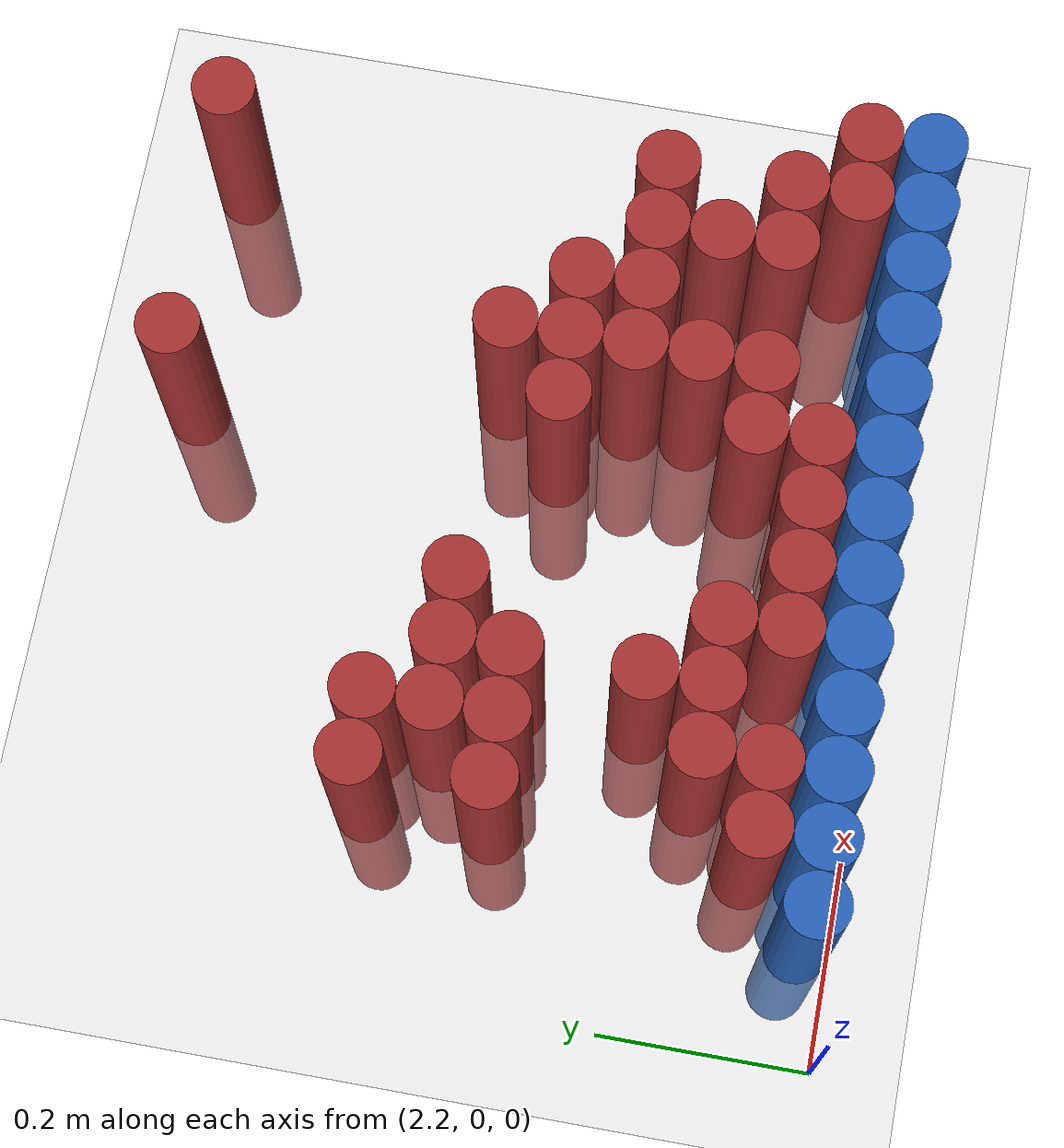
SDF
<sdf version="1.6">
 <world name="default">
  <model name="ground_plane">
   <static>1</static>
   <link name="link">
    <collision name="collision">
     <geometry><plane><normal>0 0 1</normal><size>100 100</size></plane></geometry>
     <surface><friction><ode><mu>100</mu><mu2>50</mu2></ode></friction></surface>
    </collision>
    <visual name="visual">
     <cast_shadows>0</cast_shadows>
     <geometry><plane><normal>0 0 1</normal><size>100 100</size></plane></geometry>
     <material>
      <script><uri>file://media/materials/scripts/gazebo.material</uri><name>Gazebo/Grey</name></script>
     </material>
    </visual>
   </link>
  </model>
  <model name="unit_cylinder_228">
   <static>1</static>
   <pose>2.730000 0.690000 0.000000 0.000000 0.000000 0.000000</pose>
   <link name="link">
    <inertial>
     <mass>1</mass>
     <inertia><ixx>0.145833</ixx><ixy>0</ixy><ixz>0</ixz><iyy>0.145833</iyy><iyz>0</iyz><izz>0.125</izz></inertia>
    </inertial>
    <collision name="collision">
     <geometry><cylinder><radius>0.030000</radius><length>0.5</length></cylinder></geometry>
    </collision>
    <visual name="visual">
     <geometry><cylinder><radius>0.030000</radius><length>0.5</length></cylinder></geometry>
     <material>
      <ambient>0.648000 0.192000 0.192000 1</ambient>
      <diffuse>0.648000 0.192000 0.192000 1</diffuse>
     </material>
     <material>
      <script><name>Gazebo/Grey</name><uri>file://media/materials/scripts/gazebo.material</uri></script>
     </material>
    </visual>
   </link>
  </model>
  <model name="unit_cylinder_229">
   <static>1</static>
   <pose>2.970000 0.690000 0.000000 0.000000 0.000000 0.000000</pose>
   <link name="link">
    <inertial>
     <mass>1</mass>
     <inertia><ixx>0.145833</ixx><ixy>0</ixy><ixz>0</ixz><iyy>0.145833</iyy><iyz>0</iyz><izz>0.125</izz></inertia>
    </inertial>
    <collision name="collision">
     <geometry><cylinder><radius>0.030000</radius><length>0.5</length></cylinder></geometry>
    </collision>
    <visual name="visual">
     <geometry><cylinder><radius>0.030000</radius><length>0.5</length></cylinder></geometry>
     <material>
      <ambient>0.648000 0.192000 0.192000 1</ambient>
      <diffuse>0.648000 0.192000 0.192000 1</diffuse>
     </material>
     <material>
      <script><name>Gazebo/Grey</name><uri>file://media/materials/scripts/gazebo.material</uri></script>
     </material>
    </visual>
   </link>
  </model>
  <model name="unit_cylinder_253">
   <static>1</static>
   <pose>2.370000 0.450000 0.000000 0.000000 0.000000 0.000000</pose>
   <link name="link">
    <inertial>
     <mass>1</mass>
     <inertia><ixx>0.145833</ixx><ixy>0</ixy><ixz>0</ixz><iyy>0.145833</iyy><iyz>0</iyz><izz>0.125</izz></inertia>
    </inertial>
    <collision name="collision">
     <geometry><cylinder><radius>0.030000</radius><length>0.5</length></cylinder></geometry>
    </collision>
    <visual name="visual">
     <geometry><cylinder><radius>0.030000</radius><length>0.5</length></cylinder></geometry>
     <material>
      <ambient>0.648000 0.192000 0.192000 1</ambient>
      <diffuse>0.648000 0.192000 0.192000 1</diffuse>
     </material>
     <material>
      <script><name>Gazebo/Grey</name><uri>file://media/materials/scripts/gazebo.material</uri></script>
     </material>
    </visual>
   </link>
  </model>
  <model name="unit_cylinder_254">
   <static>1</static>
   <pose>2.430000 0.450000 0.000000 0.000000 0.000000 0.000000</pose>
   <link name="link">
    <inertial>
     <mass>1</mass>
     <inertia><ixx>0.145833</ixx><ixy>0</ixy><ixz>0</ixz><iyy>0.145833</iyy><iyz>0</iyz><izz>0.125</izz></inertia>
    </inertial>
    <collision name="collision">
     <geometry><cylinder><radius>0.030000</radius><length>0.5</length></cylinder></geometry>
    </collision>
    <visual name="visual">
     <geometry><cylinder><radius>0.030000</radius><length>0.5</length></cylinder></geometry>
     <material>
      <ambient>0.648000 0.192000 0.192000 1</ambient>
      <diffuse>0.648000 0.192000 0.192000 1</diffuse>
     </material>
     <material>
      <script><name>Gazebo/Grey</name><uri>file://media/materials/scripts/gazebo.material</uri></script>
     </material>
    </visual>
   </link>
  </model>
  <model name="unit_cylinder_261">
   <static>1</static>
   <pose>2.430000 0.390000 0.000000 0.000000 0.000000 0.000000</pose>
   <link name="link">
    <inertial>
     <mass>1</mass>
     <inertia><ixx>0.145833</ixx><ixy>0</ixy><ixz>0</ixz><iyy>0.145833</iyy><iyz>0</iyz><izz>0.125</izz></inertia>
    </inertial>
    <collision name="collision">
     <geometry><cylinder><radius>0.030000</radius><length>0.5</length></cylinder></geometry>
    </collision>
    <visual name="visual">
     <geometry><cylinder><radius>0.030000</radius><length>0.5</length></cylinder></geometry>
     <material>
      <ambient>0.648000 0.192000 0.192000 1</ambient>
      <diffuse>0.648000 0.192000 0.192000 1</diffuse>
     </material>
     <material>
      <script><name>Gazebo/Grey</name><uri>file://media/materials/scripts/gazebo.material</uri></script>
     </material>
    </visual>
   </link>
  </model>
  <model name="unit_cylinder_262">
   <static>1</static>
   <pose>2.490000 0.390000 0.000000 0.000000 0.000000 0.000000</pose>
   <link name="link">
    <inertial>
     <mass>1</mass>
     <inertia><ixx>0.145833</ixx><ixy>0</ixy><ixz>0</ixz><iyy>0.145833</iyy><iyz>0</iyz><izz>0.125</izz></inertia>
    </inertial>
    <collision name="collision">
     <geometry><cylinder><radius>0.030000</radius><length>0.5</length></cylinder></geometry>
    </collision>
    <visual name="visual">
     <geometry><cylinder><radius>0.030000</radius><length>0.5</length></cylinder></geometry>
     <material>
      <ambient>0.648000 0.192000 0.192000 1</ambient>
      <diffuse>0.648000 0.192000 0.192000 1</diffuse>
     </material>
     <material>
      <script><name>Gazebo/Grey</name><uri>file://media/materials/scripts/gazebo.material</uri></script>
     </material>
    </visual>
   </link>
  </model>
  <model name="unit_cylinder_263">
   <static>1</static>
   <pose>2.550000 0.390000 0.000000 0.000000 0.000000 0.000000</pose>
   <link name="link">
    <inertial>
     <mass>1</mass>
     <inertia><ixx>0.145833</ixx><ixy>0</ixy><ixz>0</ixz><iyy>0.145833</iyy><iyz>0</iyz><izz>0.125</izz></inertia>
    </inertial>
    <collision name="collision">
     <geometry><cylinder><radius>0.030000</radius><length>0.5</length></cylinder></geometry>
    </collision>
    <visual name="visual">
     <geometry><cylinder><radius>0.030000</radius><length>0.5</length></cylinder></geometry>
     <material>
      <ambient>0.648000 0.192000 0.192000 1</ambient>
      <diffuse>0.648000 0.192000 0.192000 1</diffuse>
     </material>
     <material>
      <script><name>Gazebo/Grey</name><uri>file://media/materials/scripts/gazebo.material</uri></script>
     </material>
    </visual>
   </link>
  </model>
  <model name="unit_cylinder_264">
   <static>1</static>
   <pose>2.790000 0.390000 0.000000 0.000000 0.000000 0.000000</pose>
   <link name="link">
    <inertial>
     <mass>1</mass>
     <inertia><ixx>0.145833</ixx><ixy>0</ixy><ixz>0</ixz><iyy>0.145833</iyy><iyz>0</iyz><izz>0.125</izz></inertia>
    </inertial>
    <collision name="collision">
     <geometry><cylinder><radius>0.030000</radius><length>0.5</length></cylinder></geometry>
    </collision>
    <visual name="visual">
     <geometry><cylinder><radius>0.030000</radius><length>0.5</length></cylinder></geometry>
     <material>
      <ambient>0.648000 0.192000 0.192000 1</ambient>
      <diffuse>0.648000 0.192000 0.192000 1</diffuse>
     </material>
     <material>
      <script><name>Gazebo/Grey</name><uri>file://media/materials/scripts/gazebo.material</uri></script>
     </material>
    </visual>
   </link>
  </model>
  <model name="unit_cylinder_269">
   <static>1</static>
   <pose>2.370000 0.330000 0.000000 0.000000 0.000000 0.000000</pose>
   <link name="link">
    <inertial>
     <mass>1</mass>
     <inertia><ixx>0.145833</ixx><ixy>0</ixy><ixz>0</ixz><iyy>0.145833</iyy><iyz>0</iyz><izz>0.125</izz></inertia>
    </inertial>
    <collision name="collision">
     <geometry><cylinder><radius>0.030000</radius><length>0.5</length></cylinder></geometry>
    </collision>
    <visual name="visual">
     <geometry><cylinder><radius>0.030000</radius><length>0.5</length></cylinder></geometry>
     <material>
      <ambient>0.648000 0.192000 0.192000 1</ambient>
      <diffuse>0.648000 0.192000 0.192000 1</diffuse>
     </material>
     <material>
      <script><name>Gazebo/Grey</name><uri>file://media/materials/scripts/gazebo.material</uri></script>
     </material>
    </visual>
   </link>
  </model>
  <model name="unit_cylinder_270">
   <static>1</static>
   <pose>2.430000 0.330000 0.000000 0.000000 0.000000 0.000000</pose>
   <link name="link">
    <inertial>
     <mass>1</mass>
     <inertia><ixx>0.145833</ixx><ixy>0</ixy><ixz>0</ixz><iyy>0.145833</iyy><iyz>0</iyz><izz>0.125</izz></inertia>
    </inertial>
    <collision name="collision">
     <geometry><cylinder><radius>0.030000</radius><length>0.5</length></cylinder></geometry>
    </collision>
    <visual name="visual">
     <geometry><cylinder><radius>0.030000</radius><length>0.5</length></cylinder></geometry>
     <material>
      <ambient>0.648000 0.192000 0.192000 1</ambient>
      <diffuse>0.648000 0.192000 0.192000 1</diffuse>
     </material>
     <material>
      <script><name>Gazebo/Grey</name><uri>file://media/materials/scripts/gazebo.material</uri></script>
     </material>
    </visual>
   </link>
  </model>
  <model name="unit_cylinder_271">
   <static>1</static>
   <pose>2.490000 0.330000 0.000000 0.000000 0.000000 0.000000</pose>
   <link name="link">
    <inertial>
     <mass>1</mass>
     <inertia><ixx>0.145833</ixx><ixy>0</ixy><ixz>0</ixz><iyy>0.145833</iyy><iyz>0</iyz><izz>0.125</izz></inertia>
    </inertial>
    <collision name="collision">
     <geometry><cylinder><radius>0.030000</radius><length>0.5</length></cylinder></geometry>
    </collision>
    <visual name="visual">
     <geometry><cylinder><radius>0.030000</radius><length>0.5</length></cylinder></geometry>
     <material>
      <ambient>0.648000 0.192000 0.192000 1</ambient>
      <diffuse>0.648000 0.192000 0.192000 1</diffuse>
     </material>
     <material>
      <script><name>Gazebo/Grey</name><uri>file://media/materials/scripts/gazebo.material</uri></script>
     </material>
    </visual>
   </link>
  </model>
  <model name="unit_cylinder_272">
   <static>1</static>
   <pose>2.730000 0.330000 0.000000 0.000000 0.000000 0.000000</pose>
   <link name="link">
    <inertial>
     <mass>1</mass>
     <inertia><ixx>0.145833</ixx><ixy>0</ixy><ixz>0</ixz><iyy>0.145833</iyy><iyz>0</iyz><izz>0.125</izz></inertia>
    </inertial>
    <collision name="collision">
     <geometry><cylinder><radius>0.030000</radius><length>0.5</length></cylinder></geometry>
    </collision>
    <visual name="visual">
     <geometry><cylinder><radius>0.030000</radius><length>0.5</length></cylinder></geometry>
     <material>
      <ambient>0.648000 0.192000 0.192000 1</ambient>
      <diffuse>0.648000 0.192000 0.192000 1</diffuse>
     </material>
     <material>
      <script><name>Gazebo/Grey</name><uri>file://media/materials/scripts/gazebo.material</uri></script>
     </material>
    </visual>
   </link>
  </model>
  <model name="unit_cylinder_273">
   <static>1</static>
   <pose>2.790000 0.330000 0.000000 0.000000 0.000000 0.000000</pose>
   <link name="link">
    <inertial>
     <mass>1</mass>
     <inertia><ixx>0.145833</ixx><ixy>0</ixy><ixz>0</ixz><iyy>0.145833</iyy><iyz>0</iyz><izz>0.125</izz></inertia>
    </inertial>
    <collision name="collision">
     <geometry><cylinder><radius>0.030000</radius><length>0.5</length></cylinder></geometry>
    </collision>
    <visual name="visual">
     <geometry><cylinder><radius>0.030000</radius><length>0.5</length></cylinder></geometry>
     <material>
      <ambient>0.648000 0.192000 0.192000 1</ambient>
      <diffuse>0.648000 0.192000 0.192000 1</diffuse>
     </material>
     <material>
      <script><name>Gazebo/Grey</name><uri>file://media/materials/scripts/gazebo.material</uri></script>
     </material>
    </visual>
   </link>
  </model>
  <model name="unit_cylinder_274">
   <static>1</static>
   <pose>2.850000 0.330000 0.000000 0.000000 0.000000 0.000000</pose>
   <link name="link">
    <inertial>
     <mass>1</mass>
     <inertia><ixx>0.145833</ixx><ixy>0</ixy><ixz>0</ixz><iyy>0.145833</iyy><iyz>0</iyz><izz>0.125</izz></inertia>
    </inertial>
    <collision name="collision">
     <geometry><cylinder><radius>0.030000</radius><length>0.5</length></cylinder></geometry>
    </collision>
    <visual name="visual">
     <geometry><cylinder><radius>0.030000</radius><length>0.5</length></cylinder></geometry>
     <material>
      <ambient>0.648000 0.192000 0.192000 1</ambient>
      <diffuse>0.648000 0.192000 0.192000 1</diffuse>
     </material>
     <material>
      <script><name>Gazebo/Grey</name><uri>file://media/materials/scripts/gazebo.material</uri></script>
     </material>
    </visual>
   </link>
  </model>
  <model name="unit_cylinder_275">
   <static>1</static>
   <pose>2.790000 0.270000 0.000000 0.000000 0.000000 0.000000</pose>
   <link name="link">
    <inertial>
     <mass>1</mass>
     <inertia><ixx>0.145833</ixx><ixy>0</ixy><ixz>0</ixz><iyy>0.145833</iyy><iyz>0</iyz><izz>0.125</izz></inertia>
    </inertial>
    <collision name="collision">
     <geometry><cylinder><radius>0.030000</radius><length>0.5</length></cylinder></geometry>
    </collision>
    <visual name="visual">
     <geometry><cylinder><radius>0.030000</radius><length>0.5</length></cylinder></geometry>
     <material>
      <ambient>0.648000 0.192000 0.192000 1</ambient>
      <diffuse>0.648000 0.192000 0.192000 1</diffuse>
     </material>
     <material>
      <script><name>Gazebo/Grey</name><uri>file://media/materials/scripts/gazebo.material</uri></script>
     </material>
    </visual>
   </link>
  </model>
  <model name="unit_cylinder_276">
   <static>1</static>
   <pose>2.850000 0.270000 0.000000 0.000000 0.000000 0.000000</pose>
   <link name="link">
    <inertial>
     <mass>1</mass>
     <inertia><ixx>0.145833</ixx><ixy>0</ixy><ixz>0</ixz><iyy>0.145833</iyy><iyz>0</iyz><izz>0.125</izz></inertia>
    </inertial>
    <collision name="collision">
     <geometry><cylinder><radius>0.030000</radius><length>0.5</length></cylinder></geometry>
    </collision>
    <visual name="visual">
     <geometry><cylinder><radius>0.030000</radius><length>0.5</length></cylinder></geometry>
     <material>
      <ambient>0.648000 0.192000 0.192000 1</ambient>
      <diffuse>0.648000 0.192000 0.192000 1</diffuse>
     </material>
     <material>
      <script><name>Gazebo/Grey</name><uri>file://media/materials/scripts/gazebo.material</uri></script>
     </material>
    </visual>
   </link>
  </model>
  <model name="unit_cylinder_277">
   <static>1</static>
   <pose>2.910000 0.270000 0.000000 0.000000 0.000000 0.000000</pose>
   <link name="link">
    <inertial>
     <mass>1</mass>
     <inertia><ixx>0.145833</ixx><ixy>0</ixy><ixz>0</ixz><iyy>0.145833</iyy><iyz>0</iyz><izz>0.125</izz></inertia>
    </inertial>
    <collision name="collision">
     <geometry><cylinder><radius>0.030000</radius><length>0.5</length></cylinder></geometry>
    </collision>
    <visual name="visual">
     <geometry><cylinder><radius>0.030000</radius><length>0.5</length></cylinder></geometry>
     <material>
      <ambient>0.648000 0.192000 0.192000 1</ambient>
      <diffuse>0.648000 0.192000 0.192000 1</diffuse>
     </material>
     <material>
      <script><name>Gazebo/Grey</name><uri>file://media/materials/scripts/gazebo.material</uri></script>
     </material>
    </visual>
   </link>
  </model>
  <model name="unit_cylinder_278">
   <static>1</static>
   <pose>2.970000 0.270000 0.000000 0.000000 0.000000 0.000000</pose>
   <link name="link">
    <inertial>
     <mass>1</mass>
     <inertia><ixx>0.145833</ixx><ixy>0</ixy><ixz>0</ixz><iyy>0.145833</iyy><iyz>0</iyz><izz>0.125</izz></inertia>
    </inertial>
    <collision name="collision">
     <geometry><cylinder><radius>0.030000</radius><length>0.5</length></cylinder></geometry>
    </collision>
    <visual name="visual">
     <geometry><cylinder><radius>0.030000</radius><length>0.5</length></cylinder></geometry>
     <material>
      <ambient>0.648000 0.192000 0.192000 1</ambient>
      <diffuse>0.648000 0.192000 0.192000 1</diffuse>
     </material>
     <material>
      <script><name>Gazebo/Grey</name><uri>file://media/materials/scripts/gazebo.material</uri></script>
     </material>
    </visual>
   </link>
  </model>
  <model name="unit_cylinder_281">
   <static>1</static>
   <pose>2.490000 0.210000 0.000000 0.000000 0.000000 0.000000</pose>
   <link name="link">
    <inertial>
     <mass>1</mass>
     <inertia><ixx>0.145833</ixx><ixy>0</ixy><ixz>0</ixz><iyy>0.145833</iyy><iyz>0</iyz><izz>0.125</izz></inertia>
    </inertial>
    <collision name="collision">
     <geometry><cylinder><radius>0.030000</radius><length>0.5</length></cylinder></geometry>
    </collision>
    <visual name="visual">
     <geometry><cylinder><radius>0.030000</radius><length>0.5</length></cylinder></geometry>
     <material>
      <ambient>0.648000 0.192000 0.192000 1</ambient>
      <diffuse>0.648000 0.192000 0.192000 1</diffuse>
     </material>
     <material>
      <script><name>Gazebo/Grey</name><uri>file://media/materials/scripts/gazebo.material</uri></script>
     </material>
    </visual>
   </link>
  </model>
  <model name="unit_cylinder_282">
   <static>1</static>
   <pose>2.790000 0.210000 0.000000 0.000000 0.000000 0.000000</pose>
   <link name="link">
    <inertial>
     <mass>1</mass>
     <inertia><ixx>0.145833</ixx><ixy>0</ixy><ixz>0</ixz><iyy>0.145833</iyy><iyz>0</iyz><izz>0.125</izz></inertia>
    </inertial>
    <collision name="collision">
     <geometry><cylinder><radius>0.030000</radius><length>0.5</length></cylinder></geometry>
    </collision>
    <visual name="visual">
     <geometry><cylinder><radius>0.030000</radius><length>0.5</length></cylinder></geometry>
     <material>
      <ambient>0.648000 0.192000 0.192000 1</ambient>
      <diffuse>0.648000 0.192000 0.192000 1</diffuse>
     </material>
     <material>
      <script><name>Gazebo/Grey</name><uri>file://media/materials/scripts/gazebo.material</uri></script>
     </material>
    </visual>
   </link>
  </model>
  <model name="unit_cylinder_283">
   <static>1</static>
   <pose>2.910000 0.210000 0.000000 0.000000 0.000000 0.000000</pose>
   <link name="link">
    <inertial>
     <mass>1</mass>
     <inertia><ixx>0.145833</ixx><ixy>0</ixy><ixz>0</ixz><iyy>0.145833</iyy><iyz>0</iyz><izz>0.125</izz></inertia>
    </inertial>
    <collision name="collision">
     <geometry><cylinder><radius>0.030000</radius><length>0.5</length></cylinder></geometry>
    </collision>
    <visual name="visual">
     <geometry><cylinder><radius>0.030000</radius><length>0.5</length></cylinder></geometry>
     <material>
      <ambient>0.648000 0.192000 0.192000 1</ambient>
      <diffuse>0.648000 0.192000 0.192000 1</diffuse>
     </material>
     <material>
      <script><name>Gazebo/Grey</name><uri>file://media/materials/scripts/gazebo.material</uri></script>
     </material>
    </visual>
   </link>
  </model>
  <model name="unit_cylinder_289">
   <static>1</static>
   <pose>2.430000 0.150000 0.000000 0.000000 0.000000 0.000000</pose>
   <link name="link">
    <inertial>
     <mass>1</mass>
     <inertia><ixx>0.145833</ixx><ixy>0</ixy><ixz>0</ixz><iyy>0.145833</iyy><iyz>0</iyz><izz>0.125</izz></inertia>
    </inertial>
    <collision name="collision">
     <geometry><cylinder><radius>0.030000</radius><length>0.5</length></cylinder></geometry>
    </collision>
    <visual name="visual">
     <geometry><cylinder><radius>0.030000</radius><length>0.5</length></cylinder></geometry>
     <material>
      <ambient>0.648000 0.192000 0.192000 1</ambient>
      <diffuse>0.648000 0.192000 0.192000 1</diffuse>
     </material>
     <material>
      <script><name>Gazebo/Grey</name><uri>file://media/materials/scripts/gazebo.material</uri></script>
     </material>
    </visual>
   </link>
  </model>
  <model name="unit_cylinder_290">
   <static>1</static>
   <pose>2.490000 0.150000 0.000000 0.000000 0.000000 0.000000</pose>
   <link name="link">
    <inertial>
     <mass>1</mass>
     <inertia><ixx>0.145833</ixx><ixy>0</ixy><ixz>0</ixz><iyy>0.145833</iyy><iyz>0</iyz><izz>0.125</izz></inertia>
    </inertial>
    <collision name="collision">
     <geometry><cylinder><radius>0.030000</radius><length>0.5</length></cylinder></geometry>
    </collision>
    <visual name="visual">
     <geometry><cylinder><radius>0.030000</radius><length>0.5</length></cylinder></geometry>
     <material>
      <ambient>0.648000 0.192000 0.192000 1</ambient>
      <diffuse>0.648000 0.192000 0.192000 1</diffuse>
     </material>
     <material>
      <script><name>Gazebo/Grey</name><uri>file://media/materials/scripts/gazebo.material</uri></script>
     </material>
    </visual>
   </link>
  </model>
  <model name="unit_cylinder_291">
   <static>1</static>
   <pose>2.550000 0.150000 0.000000 0.000000 0.000000 0.000000</pose>
   <link name="link">
    <inertial>
     <mass>1</mass>
     <inertia><ixx>0.145833</ixx><ixy>0</ixy><ixz>0</ixz><iyy>0.145833</iyy><iyz>0</iyz><izz>0.125</izz></inertia>
    </inertial>
    <collision name="collision">
     <geometry><cylinder><radius>0.030000</radius><length>0.5</length></cylinder></geometry>
    </collision>
    <visual name="visual">
     <geometry><cylinder><radius>0.030000</radius><length>0.5</length></cylinder></geometry>
     <material>
      <ambient>0.648000 0.192000 0.192000 1</ambient>
      <diffuse>0.648000 0.192000 0.192000 1</diffuse>
     </material>
     <material>
      <script><name>Gazebo/Grey</name><uri>file://media/materials/scripts/gazebo.material</uri></script>
     </material>
    </visual>
   </link>
  </model>
  <model name="unit_cylinder_292">
   <static>1</static>
   <pose>2.730000 0.150000 0.000000 0.000000 0.000000 0.000000</pose>
   <link name="link">
    <inertial>
     <mass>1</mass>
     <inertia><ixx>0.145833</ixx><ixy>0</ixy><ixz>0</ixz><iyy>0.145833</iyy><iyz>0</iyz><izz>0.125</izz></inertia>
    </inertial>
    <collision name="collision">
     <geometry><cylinder><radius>0.030000</radius><length>0.5</length></cylinder></geometry>
    </collision>
    <visual name="visual">
     <geometry><cylinder><radius>0.030000</radius><length>0.5</length></cylinder></geometry>
     <material>
      <ambient>0.648000 0.192000 0.192000 1</ambient>
      <diffuse>0.648000 0.192000 0.192000 1</diffuse>
     </material>
     <material>
      <script><name>Gazebo/Grey</name><uri>file://media/materials/scripts/gazebo.material</uri></script>
     </material>
    </visual>
   </link>
  </model>
  <model name="unit_cylinder_293">
   <static>1</static>
   <pose>2.790000 0.150000 0.000000 0.000000 0.000000 0.000000</pose>
   <link name="link">
    <inertial>
     <mass>1</mass>
     <inertia><ixx>0.145833</ixx><ixy>0</ixy><ixz>0</ixz><iyy>0.145833</iyy><iyz>0</iyz><izz>0.125</izz></inertia>
    </inertial>
    <collision name="collision">
     <geometry><cylinder><radius>0.030000</radius><length>0.5</length></cylinder></geometry>
    </collision>
    <visual name="visual">
     <geometry><cylinder><radius>0.030000</radius><length>0.5</length></cylinder></geometry>
     <material>
      <ambient>0.648000 0.192000 0.192000 1</ambient>
      <diffuse>0.648000 0.192000 0.192000 1</diffuse>
     </material>
     <material>
      <script><name>Gazebo/Grey</name><uri>file://media/materials/scripts/gazebo.material</uri></script>
     </material>
    </visual>
   </link>
  </model>
  <model name="unit_cylinder_294">
   <static>1</static>
   <pose>2.910000 0.150000 0.000000 0.000000 0.000000 0.000000</pose>
   <link name="link">
    <inertial>
     <mass>1</mass>
     <inertia><ixx>0.145833</ixx><ixy>0</ixy><ixz>0</ixz><iyy>0.145833</iyy><iyz>0</iyz><izz>0.125</izz></inertia>
    </inertial>
    <collision name="collision">
     <geometry><cylinder><radius>0.030000</radius><length>0.5</length></cylinder></geometry>
    </collision>
    <visual name="visual">
     <geometry><cylinder><radius>0.030000</radius><length>0.5</length></cylinder></geometry>
     <material>
      <ambient>0.648000 0.192000 0.192000 1</ambient>
      <diffuse>0.648000 0.192000 0.192000 1</diffuse>
     </material>
     <material>
      <script><name>Gazebo/Grey</name><uri>file://media/materials/scripts/gazebo.material</uri></script>
     </material>
    </visual>
   </link>
  </model>
  <model name="unit_cylinder_295">
   <static>1</static>
   <pose>2.970000 0.150000 0.000000 0.000000 0.000000 0.000000</pose>
   <link name="link">
    <inertial>
     <mass>1</mass>
     <inertia><ixx>0.145833</ixx><ixy>0</ixy><ixz>0</ixz><iyy>0.145833</iyy><iyz>0</iyz><izz>0.125</izz></inertia>
    </inertial>
    <collision name="collision">
     <geometry><cylinder><radius>0.030000</radius><length>0.5</length></cylinder></geometry>
    </collision>
    <visual name="visual">
     <geometry><cylinder><radius>0.030000</radius><length>0.5</length></cylinder></geometry>
     <material>
      <ambient>0.648000 0.192000 0.192000 1</ambient>
      <diffuse>0.648000 0.192000 0.192000 1</diffuse>
     </material>
     <material>
      <script><name>Gazebo/Grey</name><uri>file://media/materials/scripts/gazebo.material</uri></script>
     </material>
    </visual>
   </link>
  </model>
  <model name="unit_cylinder_301">
   <static>1</static>
   <pose>2.370000 0.090000 0.000000 0.000000 0.000000 0.000000</pose>
   <link name="link">
    <inertial>
     <mass>1</mass>
     <inertia><ixx>0.145833</ixx><ixy>0</ixy><ixz>0</ixz><iyy>0.145833</iyy><iyz>0</iyz><izz>0.125</izz></inertia>
    </inertial>
    <collision name="collision">
     <geometry><cylinder><radius>0.030000</radius><length>0.5</length></cylinder></geometry>
    </collision>
    <visual name="visual">
     <geometry><cylinder><radius>0.030000</radius><length>0.5</length></cylinder></geometry>
     <material>
      <ambient>0.648000 0.192000 0.192000 1</ambient>
      <diffuse>0.648000 0.192000 0.192000 1</diffuse>
     </material>
     <material>
      <script><name>Gazebo/Grey</name><uri>file://media/materials/scripts/gazebo.material</uri></script>
     </material>
    </visual>
   </link>
  </model>
  <model name="unit_cylinder_302">
   <static>1</static>
   <pose>2.430000 0.090000 0.000000 0.000000 0.000000 0.000000</pose>
   <link name="link">
    <inertial>
     <mass>1</mass>
     <inertia><ixx>0.145833</ixx><ixy>0</ixy><ixz>0</ixz><iyy>0.145833</iyy><iyz>0</iyz><izz>0.125</izz></inertia>
    </inertial>
    <collision name="collision">
     <geometry><cylinder><radius>0.030000</radius><length>0.5</length></cylinder></geometry>
    </collision>
    <visual name="visual">
     <geometry><cylinder><radius>0.030000</radius><length>0.5</length></cylinder></geometry>
     <material>
      <ambient>0.648000 0.192000 0.192000 1</ambient>
      <diffuse>0.648000 0.192000 0.192000 1</diffuse>
     </material>
     <material>
      <script><name>Gazebo/Grey</name><uri>file://media/materials/scripts/gazebo.material</uri></script>
     </material>
    </visual>
   </link>
  </model>
  <model name="unit_cylinder_303">
   <static>1</static>
   <pose>2.550000 0.090000 0.000000 0.000000 0.000000 0.000000</pose>
   <link name="link">
    <inertial>
     <mass>1</mass>
     <inertia><ixx>0.145833</ixx><ixy>0</ixy><ixz>0</ixz><iyy>0.145833</iyy><iyz>0</iyz><izz>0.125</izz></inertia>
    </inertial>
    <collision name="collision">
     <geometry><cylinder><radius>0.030000</radius><length>0.5</length></cylinder></geometry>
    </collision>
    <visual name="visual">
     <geometry><cylinder><radius>0.030000</radius><length>0.5</length></cylinder></geometry>
     <material>
      <ambient>0.648000 0.192000 0.192000 1</ambient>
      <diffuse>0.648000 0.192000 0.192000 1</diffuse>
     </material>
     <material>
      <script><name>Gazebo/Grey</name><uri>file://media/materials/scripts/gazebo.material</uri></script>
     </material>
    </visual>
   </link>
  </model>
  <model name="unit_cylinder_304">
   <static>1</static>
   <pose>2.610000 0.090000 0.000000 0.000000 0.000000 0.000000</pose>
   <link name="link">
    <inertial>
     <mass>1</mass>
     <inertia><ixx>0.145833</ixx><ixy>0</ixy><ixz>0</ixz><iyy>0.145833</iyy><iyz>0</iyz><izz>0.125</izz></inertia>
    </inertial>
    <collision name="collision">
     <geometry><cylinder><radius>0.030000</radius><length>0.5</length></cylinder></geometry>
    </collision>
    <visual name="visual">
     <geometry><cylinder><radius>0.030000</radius><length>0.5</length></cylinder></geometry>
     <material>
      <ambient>0.648000 0.192000 0.192000 1</ambient>
      <diffuse>0.648000 0.192000 0.192000 1</diffuse>
     </material>
     <material>
      <script><name>Gazebo/Grey</name><uri>file://media/materials/scripts/gazebo.material</uri></script>
     </material>
    </visual>
   </link>
  </model>
  <model name="unit_cylinder_305">
   <static>1</static>
   <pose>2.670000 0.090000 0.000000 0.000000 0.000000 0.000000</pose>
   <link name="link">
    <inertial>
     <mass>1</mass>
     <inertia><ixx>0.145833</ixx><ixy>0</ixy><ixz>0</ixz><iyy>0.145833</iyy><iyz>0</iyz><izz>0.125</izz></inertia>
    </inertial>
    <collision name="collision">
     <geometry><cylinder><radius>0.030000</radius><length>0.5</length></cylinder></geometry>
    </collision>
    <visual name="visual">
     <geometry><cylinder><radius>0.030000</radius><length>0.5</length></cylinder></geometry>
     <material>
      <ambient>0.648000 0.192000 0.192000 1</ambient>
      <diffuse>0.648000 0.192000 0.192000 1</diffuse>
     </material>
     <material>
      <script><name>Gazebo/Grey</name><uri>file://media/materials/scripts/gazebo.material</uri></script>
     </material>
    </visual>
   </link>
  </model>
  <model name="unit_cylinder_306">
   <static>1</static>
   <pose>2.730000 0.090000 0.000000 0.000000 0.000000 0.000000</pose>
   <link name="link">
    <inertial>
     <mass>1</mass>
     <inertia><ixx>0.145833</ixx><ixy>0</ixy><ixz>0</ixz><iyy>0.145833</iyy><iyz>0</iyz><izz>0.125</izz></inertia>
    </inertial>
    <collision name="collision">
     <geometry><cylinder><radius>0.030000</radius><length>0.5</length></cylinder></geometry>
    </collision>
    <visual name="visual">
     <geometry><cylinder><radius>0.030000</radius><length>0.5</length></cylinder></geometry>
     <material>
      <ambient>0.648000 0.192000 0.192000 1</ambient>
      <diffuse>0.648000 0.192000 0.192000 1</diffuse>
     </material>
     <material>
      <script><name>Gazebo/Grey</name><uri>file://media/materials/scripts/gazebo.material</uri></script>
     </material>
    </visual>
   </link>
  </model>
  <model name="unit_cylinder_307">
   <static>1</static>
   <pose>2.970000 0.090000 0.000000 0.000000 0.000000 0.000000</pose>
   <link name="link">
    <inertial>
     <mass>1</mass>
     <inertia><ixx>0.145833</ixx><ixy>0</ixy><ixz>0</ixz><iyy>0.145833</iyy><iyz>0</iyz><izz>0.125</izz></inertia>
    </inertial>
    <collision name="collision">
     <geometry><cylinder><radius>0.030000</radius><length>0.5</length></cylinder></geometry>
    </collision>
    <visual name="visual">
     <geometry><cylinder><radius>0.030000</radius><length>0.5</length></cylinder></geometry>
     <material>
      <ambient>0.648000 0.192000 0.192000 1</ambient>
      <diffuse>0.648000 0.192000 0.192000 1</diffuse>
     </material>
     <material>
      <script><name>Gazebo/Grey</name><uri>file://media/materials/scripts/gazebo.material</uri></script>
     </material>
    </visual>
   </link>
  </model>
  <model name="unit_cylinder_308">
   <static>1</static>
   <pose>3.030000 0.090000 0.000000 0.000000 0.000000 0.000000</pose>
   <link name="link">
    <inertial>
     <mass>1</mass>
     <inertia><ixx>0.145833</ixx><ixy>0</ixy><ixz>0</ixz><iyy>0.145833</iyy><iyz>0</iyz><izz>0.125</izz></inertia>
    </inertial>
    <collision name="collision">
     <geometry><cylinder><radius>0.030000</radius><length>0.5</length></cylinder></geometry>
    </collision>
    <visual name="visual">
     <geometry><cylinder><radius>0.030000</radius><length>0.5</length></cylinder></geometry>
     <material>
      <ambient>0.648000 0.192000 0.192000 1</ambient>
      <diffuse>0.648000 0.192000 0.192000 1</diffuse>
     </material>
     <material>
      <script><name>Gazebo/Grey</name><uri>file://media/materials/scripts/gazebo.material</uri></script>
     </material>
    </visual>
   </link>
  </model>
  <model name="unit_cylinder_320">
   <static>1</static>
   <pose>2.310000 0.030000 0.000000 0.000000 0.000000 0.000000</pose>
   <link name="link">
    <inertial>
     <mass>1</mass>
     <inertia><ixx>0.145833</ixx><ixy>0</ixy><ixz>0</ixz><iyy>0.145833</iyy><iyz>0</iyz><izz>0.125</izz></inertia>
    </inertial>
    <collision name="collision">
     <geometry><cylinder><radius>0.030000</radius><length>0.5</length></cylinder></geometry>
    </collision>
    <visual name="visual">
     <geometry><cylinder><radius>0.030000</radius><length>0.5</length></cylinder></geometry>
     <material>
      <ambient>0.152000 0.379000 0.720000 1</ambient>
      <diffuse>0.152000 0.379000 0.720000 1</diffuse>
     </material>
     <material>
      <script><name>Gazebo/Grey</name><uri>file://media/materials/scripts/gazebo.material</uri></script>
     </material>
    </visual>
   </link>
  </model>
  <model name="unit_cylinder_321">
   <static>1</static>
   <pose>2.370000 0.030000 0.000000 0.000000 0.000000 0.000000</pose>
   <link name="link">
    <inertial>
     <mass>1</mass>
     <inertia><ixx>0.145833</ixx><ixy>0</ixy><ixz>0</ixz><iyy>0.145833</iyy><iyz>0</iyz><izz>0.125</izz></inertia>
    </inertial>
    <collision name="collision">
     <geometry><cylinder><radius>0.030000</radius><length>0.5</length></cylinder></geometry>
    </collision>
    <visual name="visual">
     <geometry><cylinder><radius>0.030000</radius><length>0.5</length></cylinder></geometry>
     <material>
      <ambient>0.152000 0.379000 0.720000 1</ambient>
      <diffuse>0.152000 0.379000 0.720000 1</diffuse>
     </material>
     <material>
      <script><name>Gazebo/Grey</name><uri>file://media/materials/scripts/gazebo.material</uri></script>
     </material>
    </visual>
   </link>
  </model>
  <model name="unit_cylinder_322">
   <static>1</static>
   <pose>2.430000 0.030000 0.000000 0.000000 0.000000 0.000000</pose>
   <link name="link">
    <inertial>
     <mass>1</mass>
     <inertia><ixx>0.145833</ixx><ixy>0</ixy><ixz>0</ixz><iyy>0.145833</iyy><iyz>0</iyz><izz>0.125</izz></inertia>
    </inertial>
    <collision name="collision">
     <geometry><cylinder><radius>0.030000</radius><length>0.5</length></cylinder></geometry>
    </collision>
    <visual name="visual">
     <geometry><cylinder><radius>0.030000</radius><length>0.5</length></cylinder></geometry>
     <material>
      <ambient>0.152000 0.379000 0.720000 1</ambient>
      <diffuse>0.152000 0.379000 0.720000 1</diffuse>
     </material>
     <material>
      <script><name>Gazebo/Grey</name><uri>file://media/materials/scripts/gazebo.material</uri></script>
     </material>
    </visual>
   </link>
  </model>
  <model name="unit_cylinder_323">
   <static>1</static>
   <pose>2.490000 0.030000 0.000000 0.000000 0.000000 0.000000</pose>
   <link name="link">
    <inertial>
     <mass>1</mass>
     <inertia><ixx>0.145833</ixx><ixy>0</ixy><ixz>0</ixz><iyy>0.145833</iyy><iyz>0</iyz><izz>0.125</izz></inertia>
    </inertial>
    <collision name="collision">
     <geometry><cylinder><radius>0.030000</radius><length>0.5</length></cylinder></geometry>
    </collision>
    <visual name="visual">
     <geometry><cylinder><radius>0.030000</radius><length>0.5</length></cylinder></geometry>
     <material>
      <ambient>0.152000 0.379000 0.720000 1</ambient>
      <diffuse>0.152000 0.379000 0.720000 1</diffuse>
     </material>
     <material>
      <script><name>Gazebo/Grey</name><uri>file://media/materials/scripts/gazebo.material</uri></script>
     </material>
    </visual>
   </link>
  </model>
  <model name="unit_cylinder_324">
   <static>1</static>
   <pose>2.550000 0.030000 0.000000 0.000000 0.000000 0.000000</pose>
   <link name="link">
    <inertial>
     <mass>1</mass>
     <inertia><ixx>0.145833</ixx><ixy>0</ixy><ixz>0</ixz><iyy>0.145833</iyy><iyz>0</iyz><izz>0.125</izz></inertia>
    </inertial>
    <collision name="collision">
     <geometry><cylinder><radius>0.030000</radius><length>0.5</length></cylinder></geometry>
    </collision>
    <visual name="visual">
     <geometry><cylinder><radius>0.030000</radius><length>0.5</length></cylinder></geometry>
     <material>
      <ambient>0.152000 0.379000 0.720000 1</ambient>
      <diffuse>0.152000 0.379000 0.720000 1</diffuse>
     </material>
     <material>
      <script><name>Gazebo/Grey</name><uri>file://media/materials/scripts/gazebo.material</uri></script>
     </material>
    </visual>
   </link>
  </model>
  <model name="unit_cylinder_325">
   <static>1</static>
   <pose>2.610000 0.030000 0.000000 0.000000 0.000000 0.000000</pose>
   <link name="link">
    <inertial>
     <mass>1</mass>
     <inertia><ixx>0.145833</ixx><ixy>0</ixy><ixz>0</ixz><iyy>0.145833</iyy><iyz>0</iyz><izz>0.125</izz></inertia>
    </inertial>
    <collision name="collision">
     <geometry><cylinder><radius>0.030000</radius><length>0.5</length></cylinder></geometry>
    </collision>
    <visual name="visual">
     <geometry><cylinder><radius>0.030000</radius><length>0.5</length></cylinder></geometry>
     <material>
      <ambient>0.152000 0.379000 0.720000 1</ambient>
      <diffuse>0.152000 0.379000 0.720000 1</diffuse>
     </material>
     <material>
      <script><name>Gazebo/Grey</name><uri>file://media/materials/scripts/gazebo.material</uri></script>
     </material>
    </visual>
   </link>
  </model>
  <model name="unit_cylinder_326">
   <static>1</static>
   <pose>2.670000 0.030000 0.000000 0.000000 0.000000 0.000000</pose>
   <link name="link">
    <inertial>
     <mass>1</mass>
     <inertia><ixx>0.145833</ixx><ixy>0</ixy><ixz>0</ixz><iyy>0.145833</iyy><iyz>0</iyz><izz>0.125</izz></inertia>
    </inertial>
    <collision name="collision">
     <geometry><cylinder><radius>0.030000</radius><length>0.5</length></cylinder></geometry>
    </collision>
    <visual name="visual">
     <geometry><cylinder><radius>0.030000</radius><length>0.5</length></cylinder></geometry>
     <material>
      <ambient>0.152000 0.379000 0.720000 1</ambient>
      <diffuse>0.152000 0.379000 0.720000 1</diffuse>
     </material>
     <material>
      <script><name>Gazebo/Grey</name><uri>file://media/materials/scripts/gazebo.material</uri></script>
     </material>
    </visual>
   </link>
  </model>
  <model name="unit_cylinder_327">
   <static>1</static>
   <pose>2.730000 0.030000 0.000000 0.000000 0.000000 0.000000</pose>
   <link name="link">
    <inertial>
     <mass>1</mass>
     <inertia><ixx>0.145833</ixx><ixy>0</ixy><ixz>0</ixz><iyy>0.145833</iyy><iyz>0</iyz><izz>0.125</izz></inertia>
    </inertial>
    <collision name="collision">
     <geometry><cylinder><radius>0.030000</radius><length>0.5</length></cylinder></geometry>
    </collision>
    <visual name="visual">
     <geometry><cylinder><radius>0.030000</radius><length>0.5</length></cylinder></geometry>
     <material>
      <ambient>0.152000 0.379000 0.720000 1</ambient>
      <diffuse>0.152000 0.379000 0.720000 1</diffuse>
     </material>
     <material>
      <script><name>Gazebo/Grey</name><uri>file://media/materials/scripts/gazebo.material</uri></script>
     </material>
    </visual>
   </link>
  </model>
  <model name="unit_cylinder_328">
   <static>1</static>
   <pose>2.790000 0.030000 0.000000 0.000000 0.000000 0.000000</pose>
   <link name="link">
    <inertial>
     <mass>1</mass>
     <inertia><ixx>0.145833</ixx><ixy>0</ixy><ixz>0</ixz><iyy>0.145833</iyy><iyz>0</iyz><izz>0.125</izz></inertia>
    </inertial>
    <collision name="collision">
     <geometry><cylinder><radius>0.030000</radius><length>0.5</length></cylinder></geometry>
    </collision>
    <visual name="visual">
     <geometry><cylinder><radius>0.030000</radius><length>0.5</length></cylinder></geometry>
     <material>
      <ambient>0.152000 0.379000 0.720000 1</ambient>
      <diffuse>0.152000 0.379000 0.720000 1</diffuse>
     </material>
     <material>
      <script><name>Gazebo/Grey</name><uri>file://media/materials/scripts/gazebo.material</uri></script>
     </material>
    </visual>
   </link>
  </model>
  <model name="unit_cylinder_329">
   <static>1</static>
   <pose>2.850000 0.030000 0.000000 0.000000 0.000000 0.000000</pose>
   <link name="link">
    <inertial>
     <mass>1</mass>
     <inertia><ixx>0.145833</ixx><ixy>0</ixy><ixz>0</ixz><iyy>0.145833</iyy><iyz>0</iyz><izz>0.125</izz></inertia>
    </inertial>
    <collision name="collision">
     <geometry><cylinder><radius>0.030000</radius><length>0.5</length></cylinder></geometry>
    </collision>
    <visual name="visual">
     <geometry><cylinder><radius>0.030000</radius><length>0.5</length></cylinder></geometry>
     <material>
      <ambient>0.152000 0.379000 0.720000 1</ambient>
      <diffuse>0.152000 0.379000 0.720000 1</diffuse>
     </material>
     <material>
      <script><name>Gazebo/Grey</name><uri>file://media/materials/scripts/gazebo.material</uri></script>
     </material>
    </visual>
   </link>
  </model>
  <model name="unit_cylinder_330">
   <static>1</static>
   <pose>2.910000 0.030000 0.000000 0.000000 0.000000 0.000000</pose>
   <link name="link">
    <inertial>
     <mass>1</mass>
     <inertia><ixx>0.145833</ixx><ixy>0</ixy><ixz>0</ixz><iyy>0.145833</iyy><iyz>0</iyz><izz>0.125</izz></inertia>
    </inertial>
    <collision name="collision">
     <geometry><cylinder><radius>0.030000</radius><length>0.5</length></cylinder></geometry>
    </collision>
    <visual name="visual">
     <geometry><cylinder><radius>0.030000</radius><length>0.5</length></cylinder></geometry>
     <material>
      <ambient>0.152000 0.379000 0.720000 1</ambient>
      <diffuse>0.152000 0.379000 0.720000 1</diffuse>
     </material>
     <material>
      <script><name>Gazebo/Grey</name><uri>file://media/materials/scripts/gazebo.material</uri></script>
     </material>
    </visual>
   </link>
  </model>
  <model name="unit_cylinder_331">
   <static>1</static>
   <pose>2.970000 0.030000 0.000000 0.000000 0.000000 0.000000</pose>
   <link name="link">
    <inertial>
     <mass>1</mass>
     <inertia><ixx>0.145833</ixx><ixy>0</ixy><ixz>0</ixz><iyy>0.145833</iyy><iyz>0</iyz><izz>0.125</izz></inertia>
    </inertial>
    <collision name="collision">
     <geometry><cylinder><radius>0.030000</radius><length>0.5</length></cylinder></geometry>
    </collision>
    <visual name="visual">
     <geometry><cylinder><radius>0.030000</radius><length>0.5</length></cylinder></geometry>
     <material>
      <ambient>0.152000 0.379000 0.720000 1</ambient>
      <diffuse>0.152000 0.379000 0.720000 1</diffuse>
     </material>
     <material>
      <script><name>Gazebo/Grey</name><uri>file://media/materials/scripts/gazebo.material</uri></script>
     </material>
    </visual>
   </link>
  </model>
  <model name="unit_cylinder_332">
   <static>1</static>
   <pose>3.030000 0.030000 0.000000 0.000000 0.000000 0.000000</pose>
   <link name="link">
    <inertial>
     <mass>1</mass>
     <inertia><ixx>0.145833</ixx><ixy>0</ixy><ixz>0</ixz><iyy>0.145833</iyy><iyz>0</iyz><izz>0.125</izz></inertia>
    </inertial>
    <collision name="collision">
     <geometry><cylinder><radius>0.030000</radius><length>0.5</length></cylinder></geometry>
    </collision>
    <visual name="visual">
     <geometry><cylinder><radius>0.030000</radius><length>0.5</length></cylinder></geometry>
     <material>
      <ambient>0.152000 0.379000 0.720000 1</ambient>
      <diffuse>0.152000 0.379000 0.720000 1</diffuse>
     </material>
     <material>
      <script><name>Gazebo/Grey</name><uri>file://media/materials/scripts/gazebo.material</uri></script>
     </material>
    </visual>
   </link>
  </model>
 </world>
</sdf>
